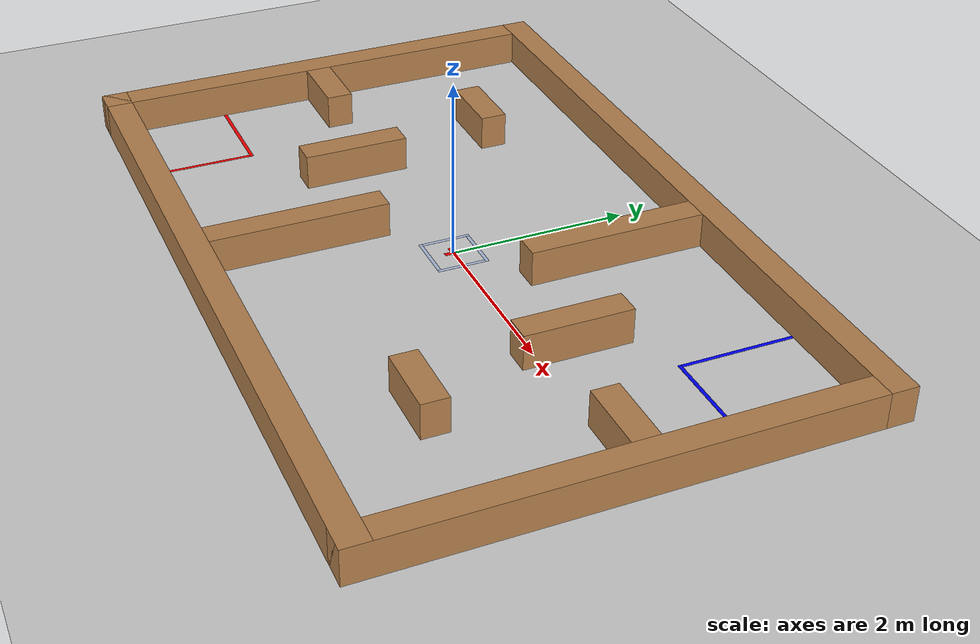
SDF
<sdf version="1.6">
 <world name="default">
  <light name="sun" type="directional">
   <pose>0 0 10 0 -0 0</pose>
   <diffuse>0.8 0.8 0.8 1</diffuse>
   <specular>0.1 0.1 0.1 1</specular>
   <attenuation>
    <range>1000</range>
    <constant>0.9</constant>
    <linear>0.01</linear>
    <quadratic>0.001</quadratic>
   </attenuation>
   <direction>-0.5 0.5 -1</direction>
  </light>
  <model name="ground_plane">
   <static>1</static>
   <link name="link">
    <collision name="collision">
     <geometry><plane><normal>0 0 1</normal><size>100 100</size></plane></geometry>
     <surface><friction><ode><mu>100</mu><mu2>50</mu2></ode></friction></surface>
    </collision>
    <visual name="visual">
     <cast_shadows>0</cast_shadows>
     <geometry><plane><normal>0 0 1</normal><size>100 100</size></plane></geometry>
     <material>
      <script><uri>file://media/materials/scripts/gazebo.material</uri><name>Gazebo/Grey</name></script>
     </material>
    </visual>
   </link>
  </model>
  <gravity>0 0 -9.8</gravity>
  <magnetic_field>6e-06 2.3e-05 -4.2e-05</magnetic_field>
  <atmosphere type="adiabatic"/>
  <physics name="default_physics" default="0" type="ode">
   <max_step_size>0.001</max_step_size>
   <real_time_factor>1</real_time_factor>
   <real_time_update_rate>1000</real_time_update_rate>
  </physics>
  <scene><ambient>0.4 0.4 0.4 1</ambient><background>0.7 0.7 0.7 1</background><shadows>1</shadows></scene>
  <spherical_coordinates>
   <surface_model>EARTH_WGS84</surface_model>
   <latitude_deg>0</latitude_deg>
   <longitude_deg>0</longitude_deg>
   <elevation>0</elevation>
   <heading_deg>0</heading_deg>
  </spherical_coordinates>
  <model name="StartingZone">
   <pose>3.355 1.855 0 0 -0 0</pose>
   <link name="Wall_0">
    <collision name="Wall_0_Collision">
     <geometry><box><size>1.29 0.04 0.001</size></box></geometry>
     <pose>0 0 0.0005 0 -0 0</pose>
    </collision>
    <visual name="Wall_0_Visual">
     <pose>0 0 0.0005 0 -0 0</pose>
     <geometry><box><size>1.29 0.04 0.001</size></box></geometry>
     <material>
      <script><uri>file://media/materials/scripts/gazebo.material</uri><name>Gazebo/Grey</name></script>
      <ambient>0 0 1 1</ambient>
     </material>
    </visual>
    <pose>-0.625 0 0 0 0 -1.5708</pose>
   </link>
   <link name="Wall_1">
    <collision name="Wall_1_Collision">
     <geometry><box><size>1.29 0.04 0.001</size></box></geometry>
     <pose>0 0 0.0005 0 -0 0</pose>
    </collision>
    <visual name="Wall_1_Visual">
     <pose>0 0 0.0005 0 -0 0</pose>
     <geometry><box><size>1.29 0.04 0.001</size></box></geometry>
     <material>
      <script><uri>file://media/materials/scripts/gazebo.material</uri><name>Gazebo/Grey</name></script>
      <ambient>0 0 1 1</ambient>
     </material>
    </visual>
    <pose>0 -0.625 0 0 -0 0</pose>
   </link>
   <static>1</static>
  </model>
  <model name="ICRA_map">
   <link name="Wall_0">
    <collision name="Wall_0_Collision">
     <geometry><box><size>8.6 0.3 0.4</size></box></geometry>
     <pose>0 0 0.2 0 -0 0</pose>
    </collision>
    <visual name="Wall_0_Visual">
     <pose>0 0 0.2 0 -0 0</pose>
     <geometry><box><size>8.6 0.3 0.4</size></box></geometry>
     <material>
      <script><uri>file://media/materials/scripts/gazebo.material</uri><name>Gazebo/Wood</name></script>
      <ambient>0.996078 0.47451 0.0196078 1</ambient>
     </material>
    </visual>
    <pose>0 -2.65 0 0 -0 0</pose>
   </link>
   <link name="Wall_1">
    <collision name="Wall_1_Collision">
     <geometry><box><size>5.6 0.3 0.4</size></box></geometry>
     <pose>0 0 0.2 0 -0 0</pose>
    </collision>
    <visual name="Wall_1_Visual">
     <pose>0 0 0.2 0 -0 0</pose>
     <geometry><box><size>5.6 0.3 0.4</size></box></geometry>
     <material>
      <script><uri>file://media/materials/scripts/gazebo.material</uri><name>Gazebo/Wood</name></script>
      <ambient>0.996078 0.47451 0.0196078 1</ambient>
     </material>
    </visual>
    <pose>4.15 0 0 0 -0 1.5708</pose>
   </link>
   <link name="Wall_11">
    <collision name="Wall_11_Collision">
     <geometry><box><size>1.2 0.3 0.4</size></box></geometry>
     <pose>0 0 0.2 0 -0 0</pose>
    </collision>
    <visual name="Wall_11_Visual">
     <pose>0 0 0.2 0 -0 0</pose>
     <geometry><box><size>1.2 0.3 0.4</size></box></geometry>
     <material>
      <script><uri>file://media/materials/scripts/gazebo.material</uri><name>Gazebo/Wood</name></script>
      <ambient>0.996078 0.47451 0.0196078 1</ambient>
     </material>
    </visual>
    <pose>-2.05 -0.4 0 0 0 -1.5708</pose>
   </link>
   <link name="Wall_13">
    <collision name="Wall_13_Collision">
     <geometry><box><size>2 0.3 0.4</size></box></geometry>
     <pose>0 0 0.2 0 -0 0</pose>
    </collision>
    <visual name="Wall_13_Visual">
     <pose>0 0 0.2 0 -0 0</pose>
     <geometry><box><size>2 0.3 0.4</size></box></geometry>
     <material>
      <script><uri>file://media/materials/scripts/gazebo.material</uri><name>Gazebo/Wood</name></script>
      <ambient>0.996078 0.47451 0.0196078 1</ambient>
     </material>
    </visual>
    <pose>0.75 1.5 0 0 0 -1.5708</pose>
   </link>
   <link name="Wall_15">
    <collision name="Wall_15_Collision">
     <geometry><box><size>1.2 0.3 0.4</size></box></geometry>
     <pose>0 0 0.2 0 -0 0</pose>
    </collision>
    <visual name="Wall_15_Visual">
     <pose>0 0 0.2 0 -0 0</pose>
     <geometry><box><size>1.2 0.3 0.4</size></box></geometry>
     <material>
      <script><uri>file://media/materials/scripts/gazebo.material</uri><name>Gazebo/Wood</name></script>
      <ambient>0.996078 0.47451 0.0196078 1</ambient>
     </material>
    </visual>
    <pose>2.05 0.4 0 0 -0 1.5708</pose>
   </link>
   <link name="Wall_17">
    <collision name="Wall_17_Collision">
     <geometry><box><size>0.8 0.3 0.4</size></box></geometry>
     <pose>0 0 0.2 0 -0 0</pose>
    </collision>
    <visual name="Wall_17_Visual">
     <pose>0 0 0.2 0 -0 0</pose>
     <geometry><box><size>0.8 0.3 0.4</size></box></geometry>
     <material>
      <script><uri>file://media/materials/scripts/gazebo.material</uri><name>Gazebo/Wood</name></script>
      <ambient>0.996078 0.47451 0.0196078 1</ambient>
     </material>
    </visual>
    <pose>2.4 -1.35 0 0 -0 3.14159</pose>
   </link>
   <link name="Wall_19">
    <collision name="Wall_19_Collision">
     <geometry><box><size>0.8 0.3 0.4</size></box></geometry>
     <pose>0 0 0.2 0 -0 0</pose>
    </collision>
    <visual name="Wall_19_Visual">
     <pose>0 0 0.2 0 -0 0</pose>
     <geometry><box><size>0.8 0.3 0.4</size></box></geometry>
     <material>
      <script><uri>file://media/materials/scripts/gazebo.material</uri><name>Gazebo/Wood</name></script>
      <ambient>0.996078 0.47451 0.0196078 1</ambient>
     </material>
    </visual>
    <pose>3.6 0.15 0 0 -0 3.14159</pose>
   </link>
   <link name="Wall_2">
    <collision name="Wall_2_Collision">
     <geometry><box><size>8.6 0.3 0.4</size></box></geometry>
     <pose>0 0 0.2 0 -0 0</pose>
    </collision>
    <visual name="Wall_2_Visual">
     <pose>0 0 0.2 0 -0 0</pose>
     <geometry><box><size>8.6 0.3 0.4</size></box></geometry>
     <material>
      <script><uri>file://media/materials/scripts/gazebo.material</uri><name>Gazebo/Wood</name></script>
      <ambient>0.996078 0.47451 0.0196078 1</ambient>
     </material>
    </visual>
    <pose>0 2.65 0 0 -0 3.14159</pose>
   </link>
   <link name="Wall_3">
    <collision name="Wall_3_Collision">
     <geometry><box><size>5.6 0.3 0.4</size></box></geometry>
     <pose>0 0 0.2 0 -0 0</pose>
    </collision>
    <visual name="Wall_3_Visual">
     <pose>0 0 0.2 0 -0 0</pose>
     <geometry><box><size>5.6 0.3 0.4</size></box></geometry>
     <material>
      <script><uri>file://media/materials/scripts/gazebo.material</uri><name>Gazebo/Wood</name></script>
      <ambient>0.996078 0.47451 0.0196078 1</ambient>
     </material>
    </visual>
    <pose>-4.15 0 0 0 0 -1.5708</pose>
   </link>
   <link name="Wall_5">
    <collision name="Wall_5_Collision">
     <geometry><box><size>2 0.3 0.4</size></box></geometry>
     <pose>0 0 0.2 0 -0 0</pose>
    </collision>
    <visual name="Wall_5_Visual">
     <pose>0 0 0.2 0 -0 0</pose>
     <geometry><box><size>2 0.3 0.4</size></box></geometry>
     <material>
      <script><uri>file://media/materials/scripts/gazebo.material</uri><name>Gazebo/Wood</name></script>
      <ambient>0.996078 0.47451 0.0196078 1</ambient>
     </material>
    </visual>
    <pose>-0.75 -1.5 0 0 0 -1.5708</pose>
   </link>
   <link name="Wall_7">
    <collision name="Wall_7_Collision">
     <geometry><box><size>0.8 0.3 0.4</size></box></geometry>
     <pose>0 0 0.2 0 -0 0</pose>
    </collision>
    <visual name="Wall_7_Visual">
     <pose>0 0 0.2 0 -0 0</pose>
     <geometry><box><size>0.8 0.3 0.4</size></box></geometry>
     <material>
      <script><uri>file://media/materials/scripts/gazebo.material</uri><name>Gazebo/Wood</name></script>
      <ambient>0.996078 0.47451 0.0196078 1</ambient>
     </material>
    </visual>
    <pose>-3.6 -0.15 0 0 -0 0</pose>
   </link>
   <link name="Wall_9">
    <collision name="Wall_9_Collision">
     <geometry><box><size>0.8 0.3 0.4</size></box></geometry>
     <pose>0 0 0.2 0 -0 0</pose>
    </collision>
    <visual name="Wall_9_Visual">
     <pose>0 0 0.2 0 -0 0</pose>
     <geometry><box><size>0.8 0.3 0.4</size></box></geometry>
     <material>
      <script><uri>file://media/materials/scripts/gazebo.material</uri><name>Gazebo/Wood</name></script>
      <ambient>0.996078 0.47451 0.0196078 1</ambient>
     </material>
    </visual>
    <pose>-2.4 1.35 0 0 -0 0</pose>
   </link>
   <static>1</static>
  </model>
  <model name="BonusZone">
   <link name="Wall_0">
    <collision name="Wall_0_Collision">
     <geometry><box><size>0.2 0.05 0.001</size></box></geometry>
     <pose>0 0 0.0005 0 -0 0</pose>
    </collision>
    <visual name="Wall_0_Visual">
     <pose>0 0 0.0005 0 -0 0</pose>
     <geometry><box><size>0.2 0.05 0.001</size></box></geometry>
     <material>
      <script><uri>file://media/materials/scripts/gazebo.material</uri><name>Gazebo/Grey</name></script>
      <ambient>1 0 0 1</ambient>
     </material>
    </visual>
   </link>
   <link name="Wall_2">
    <collision name="Wall_2_Collision">
     <geometry><box><size>0.2 0.05 0.001</size></box></geometry>
     <pose>0 0 0.0005 0 -0 0</pose>
    </collision>
    <visual name="Wall_2_Visual">
     <pose>0 0 0.0005 0 -0 0</pose>
     <geometry><box><size>0.2 0.05 0.001</size></box></geometry>
     <material>
      <script><uri>file://media/materials/scripts/gazebo.material</uri><name>Gazebo/Grey</name></script>
      <ambient>1 0 0 1</ambient>
     </material>
    </visual>
    <pose>0 0 0 0 -0 1.5708</pose>
   </link>
   <link name="Wall_5">
    <collision name="Wall_5_Collision">
     <geometry><box><size>0.58 0.04 0.001</size></box></geometry>
     <pose>0 0 0.0005 0 -0 0</pose>
    </collision>
    <visual name="Wall_5_Visual">
     <pose>0 0 0.0005 0 -0 0</pose>
     <geometry><box><size>0.58 0.04 0.001</size></box></geometry>
     <material>
      <script><uri>file://media/materials/scripts/gazebo.material</uri><name>Gazebo/Grey</name></script>
      <ambient>0.678431 0.74902 0.870588 1</ambient>
     </material>
    </visual>
    <pose>0 0.27 0 0 -0 0</pose>
   </link>
   <link name="Wall_6">
    <collision name="Wall_6_Collision">
     <geometry><box><size>0.58 0.04 0.001</size></box></geometry>
     <pose>0 0 0.0005 0 -0 0</pose>
    </collision>
    <visual name="Wall_6_Visual">
     <pose>0 0 0.0005 0 -0 0</pose>
     <geometry><box><size>0.58 0.04 0.001</size></box></geometry>
     <material>
      <script><uri>file://media/materials/scripts/gazebo.material</uri><name>Gazebo/Grey</name></script>
      <ambient>0.678431 0.74902 0.870588 1</ambient>
     </material>
    </visual>
    <pose>0.27 0 0 0 0 -1.5708</pose>
   </link>
   <link name="Wall_7">
    <collision name="Wall_7_Collision">
     <geometry><box><size>0.58 0.04 0.001</size></box></geometry>
     <pose>0 0 0.0005 0 -0 0</pose>
    </collision>
    <visual name="Wall_7_Visual">
     <pose>0 0 0.0005 0 -0 0</pose>
     <geometry><box><size>0.58 0.04 0.001</size></box></geometry>
     <material>
      <script><uri>file://media/materials/scripts/gazebo.material</uri><name>Gazebo/Grey</name></script>
      <ambient>0.678431 0.74902 0.870588 1</ambient>
     </material>
    </visual>
    <pose>0 -0.27 0 0 -0 3.14159</pose>
   </link>
   <link name="Wall_8">
    <collision name="Wall_8_Collision">
     <geometry><box><size>0.58 0.04 0.001</size></box></geometry>
     <pose>0 0 0.0005 0 -0 0</pose>
    </collision>
    <visual name="Wall_8_Visual">
     <pose>0 0 0.0005 0 -0 0</pose>
     <geometry><box><size>0.58 0.04 0.001</size></box></geometry>
     <material>
      <script><uri>file://media/materials/scripts/gazebo.material</uri><name>Gazebo/Grey</name></script>
      <ambient>0.678431 0.74902 0.870588 1</ambient>
     </material>
    </visual>
    <pose>-0.27 0 0 0 -0 1.5708</pose>
   </link>
   <static>1</static>
  </model>
  <model name="GoalZone">
   <pose>-3.51957 -2 0 0 -0 0</pose>
   <link name="Wall_0">
    <collision name="Wall_0_Collision">
     <geometry><box><size>1.29 0.04 0.001</size></box></geometry>
     <pose>0 0 0.0005 0 -0 0</pose>
    </collision>
    <visual name="Wall_0_Visual">
     <pose>0 0 0.0005 0 -0 0</pose>
     <geometry><box><size>1.29 0.04 0.001</size></box></geometry>
     <material>
      <script><uri>file://media/materials/scripts/gazebo.material</uri><name>Gazebo/Grey</name></script>
      <ambient>1 0 0 1</ambient>
     </material>
    </visual>
    <pose>0 0.62642 0 0 -0 0.000126</pose>
   </link>
   <link name="Wall_1">
    <collision name="Wall_1_Collision">
     <geometry><box><size>1.293 0.04 0.001</size></box></geometry>
     <pose>0 0 0.0005 0 -0 0</pose>
    </collision>
    <visual name="Wall_1_Visual">
     <pose>0 0 0.0005 0 -0 0</pose>
     <geometry><box><size>1.293 0.04 0.001</size></box></geometry>
     <material>
      <script><uri>file://media/materials/scripts/gazebo.material</uri><name>Gazebo/Grey</name></script>
      <ambient>1 0 0 1</ambient>
     </material>
    </visual>
    <pose>0.625 -1e-06 0 0 0 -1.5708</pose>
   </link>
   <static>1</static>
  </model>
 </world>
</sdf>
